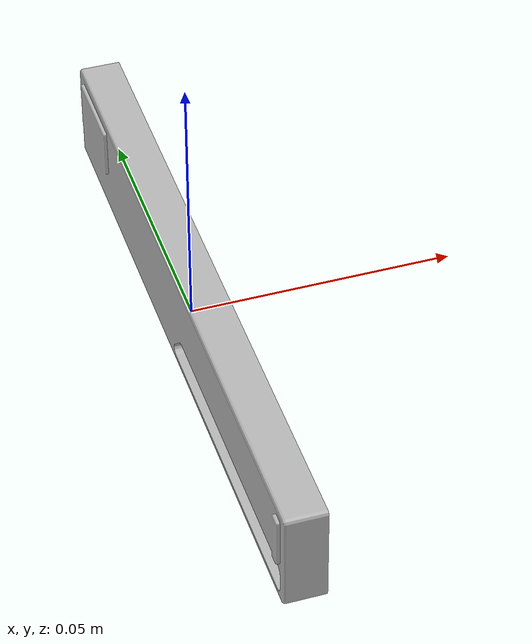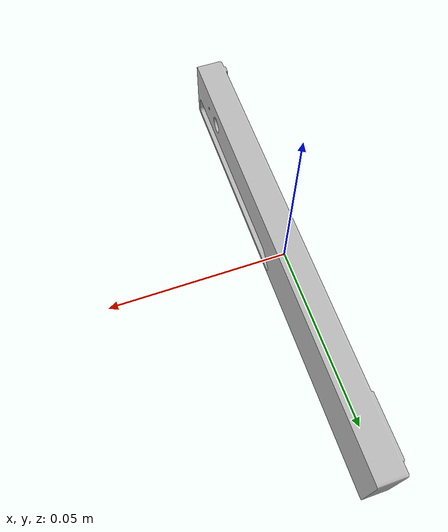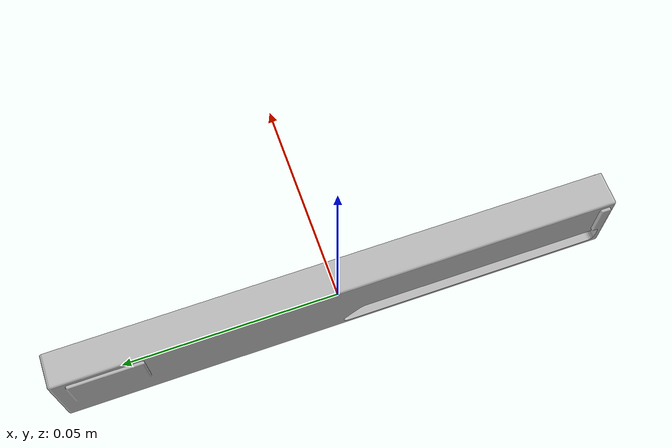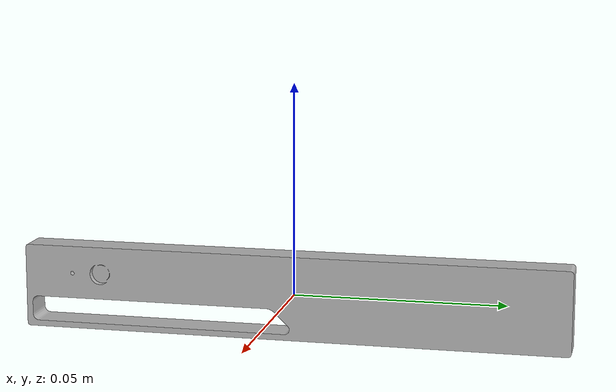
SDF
<?xml version="1.0"?>
<sdf version="1.6">
  <model name="realsense_camera">
    <pose frame="">0 0 0 0 0 0</pose>
    <link name="link">
      <inertial>
        <mass>0.0615752</mass>
        <inertia>
          <ixx>9.108e-05</ixx>
          <ixy>0</ixy>
          <ixz>0</ixz>
          <iyy>2.51e-06</iyy>
          <iyz>0</iyz>
          <izz>8.931e-05</izz>
        </inertia>
        <pose frame=''>0 0 0 0 -0 0</pose>
      </inertial>
      <self_collide>0</self_collide>
      <enable_wind>0</enable_wind>
      <kinematic>0</kinematic>
      <gravity>1</gravity>
      <visual name="visual">
        <geometry>
          <mesh>
            <uri>model://realsense_camera/meshes/realsense_camera.dae</uri>
          </mesh>
        </geometry>
      </visual>

    <sensor name="imu_sensor" type="imu">
      <always_on>true</always_on>
      <parent>link</parent>
      <update_rate>500</update_rate>
      <visualize>true</visualize>
      <topic>imu_gazebo</topic>
      <plugin filename="libgazebo_ros_imu_sensor.so" name="imu_plugin">
        <topicName>imu_gazebo</topicName>
        <bodyName>imu_link_stereo</bodyName>
        <updateRateHZ>500.0</updateRateHZ>
        <gaussianNoise>0.0</gaussianNoise>
        <xyzOffset>0 0 0</xyzOffset>
        <rpyOffset>0 0 0</rpyOffset>
        <frameName>imu_link_stereo</frameName>

        <gyroscopeNoiseDensity>0.0006</gyroscopeNoiseDensity>
        <gyroscopeRandomWalk>0.000003</gyroscopeRandomWalk>
        <gyroscopeTurnOnBiasSigma>0.03</gyroscopeTurnOnBiasSigma>

        <accelerometerNoiseDensity>0.002</accelerometerNoiseDensity>
        <accelerometerRandomWalk>0.00002</accelerometerRandomWalk>
        <accelerometerTurnOnBiasSigma>0.1</accelerometerTurnOnBiasSigma>

      </plugin>
      <pose>0 0 0.3 0 0 0</pose>
    </sensor>

      <sensor name="stereo" type="multicamera">
        <always_on>1</always_on>
        <update_rate>30</update_rate>
        <visualize>false</visualize>
        <camera name="left">
          <pose>0 0.06 0 0 0 0</pose>
          <horizontal_fov>1.5708</horizontal_fov>
          <image>
            <width>752</width>
            <height>480</height>
            <format>R8G8B8</format>
          </image>
          <clip>
            <near>0.1</near>
            <far>300</far>
          </clip>
        </camera>
        <camera name="right">
          <pose>0 -0.06 0 0 0 0</pose>
          <horizontal_fov>1.5708</horizontal_fov>
          <image>
            <width>752</width>
            <height>480</height>
            <format>R8G8B8</format>
          </image>
          <clip>
            <near>0.1</near>
            <far>300</far>
          </clip>
        </camera>
        <plugin name="stereo_camera_controller" filename="libgazebo_ros_multicamera.so">
          <robotNamespace></robotNamespace>
          <alwaysOn>true</alwaysOn>
          <updateRate>30</updateRate>
          <cameraName>/stereo_camera</cameraName>
          <imageTopicName>image_raw</imageTopicName>
          <cameraInfoTopicName>camera_info</cameraInfoTopicName>
          <frameName>stereo_camera_frame</frameName>
          <hackBaseline>0.12</hackBaseline>
          <Fx>376.0</Fx>
          <Fy>376.0</Fy>
          <Cx>376.0</Cx>
          <Cy>240.0</Cy>
          <distortionK1>-0.1</distortionK1>
          <distortionK2>0.01</distortionK2>
          <distortionK3>0.0</distortionK3>
          <distortionT1>5e-5</distortionT1>
          <distortionT2>-1e-4</distortionT2>
        </plugin>
      </sensor>

      <sensor name="depth" type="depth">
        <update_rate>20</update_rate>
        <camera>
          <horizontal_fov>1.047198</horizontal_fov>
          <image>
            <width>640</width>
            <height>480</height>
            <format>R8G8B8</format>
          </image>
          <clip>
            <near>0.05</near>
            <far>100</far>
          </clip>
        </camera>
        <plugin name="kinect_controller" filename="libgazebo_ros_openni_kinect.so">
          <robotNamespace></robotNamespace>
          <baseline>0.2</baseline>
          <alwaysOn>true</alwaysOn>
          <updateRate>20</updateRate>
          <cameraName>realsense/depth_camera</cameraName>
          <imageTopicName>color/image_raw</imageTopicName>
          <cameraInfoTopicName>color/camera_info</cameraInfoTopicName>
          <depthImageTopicName>depth/image_raw</depthImageTopicName>
          <depthImageInfoTopicName>depth/camera_info</depthImageInfoTopicName>
          <pointCloudTopicName>depth/points</pointCloudTopicName>
          <frameName>depth_camera_base</frameName>
          <pointCloudCutoff>0.05</pointCloudCutoff>
          <pointCloudCutoffMax>10</pointCloudCutoffMax>
          <distortionK1>0.00000001</distortionK1>
          <distortionK2>0.00000001</distortionK2>
          <distortionK3>0.00000001</distortionK3>
          <distortionT1>0.00000001</distortionT1>
          <distortionT2>0.00000001</distortionT2>
          <CxPrime>0</CxPrime>
          <Cx>0</Cx>
          <Cy>0</Cy>
          <focalLength>0</focalLength>
          <hackBaseline>0</hackBaseline>
        </plugin>
      </sensor>
    </link>
  </model>
</sdf>
